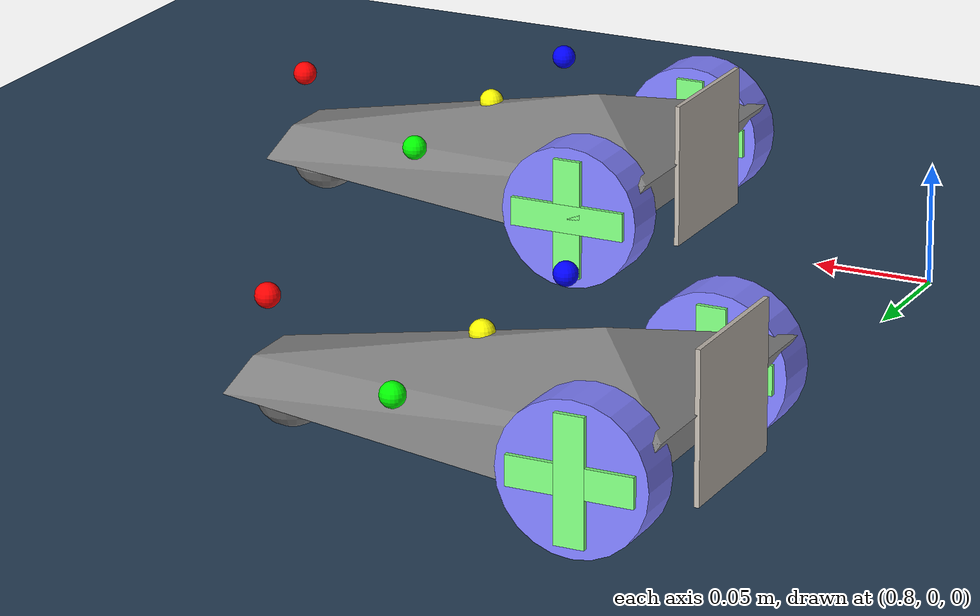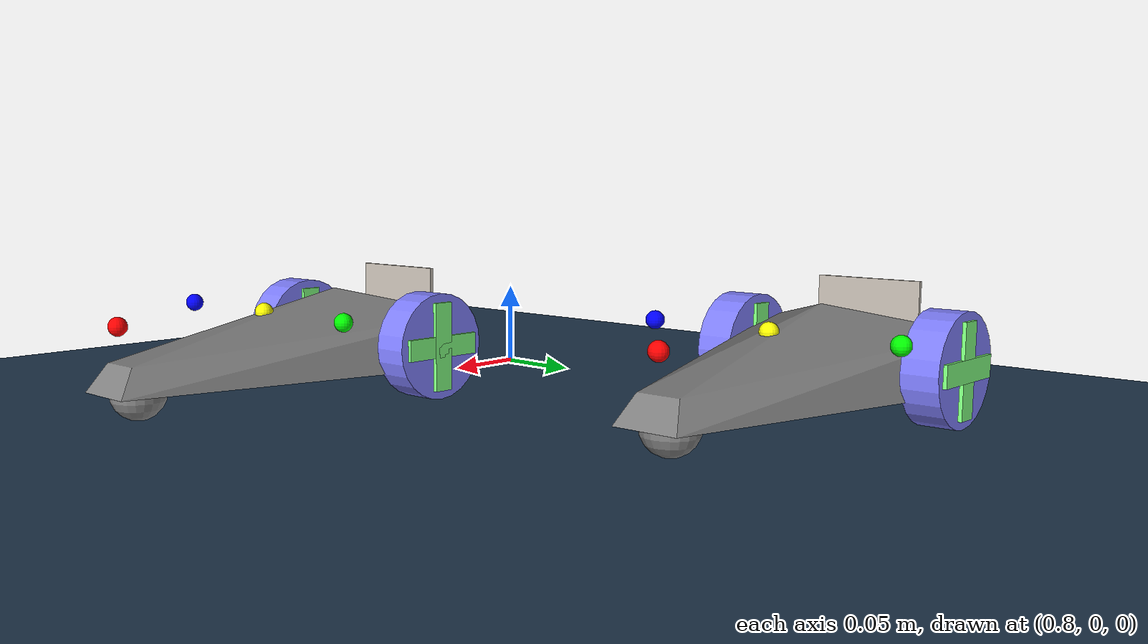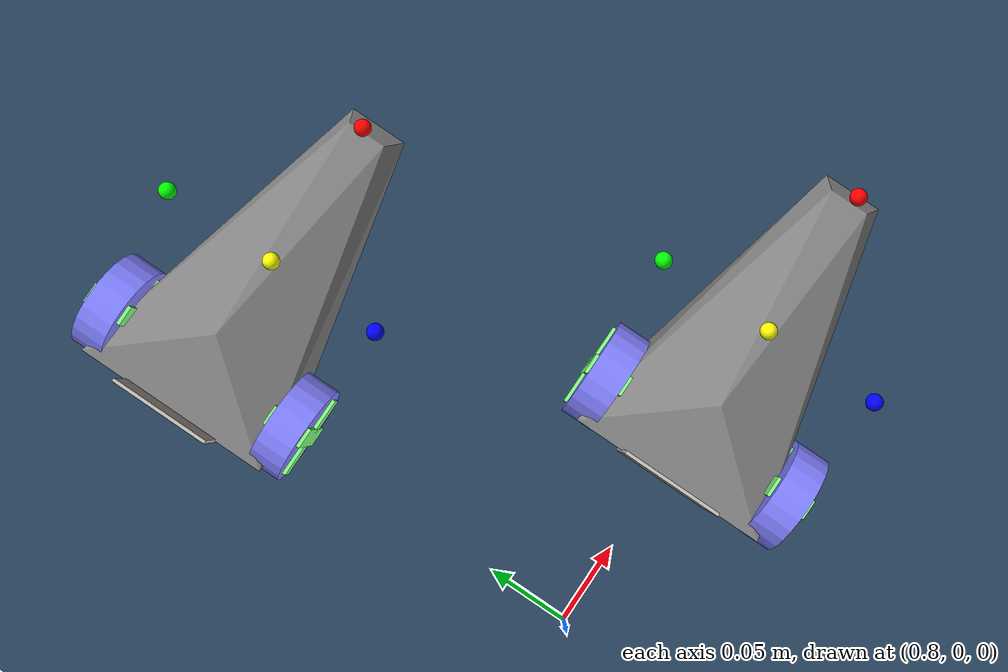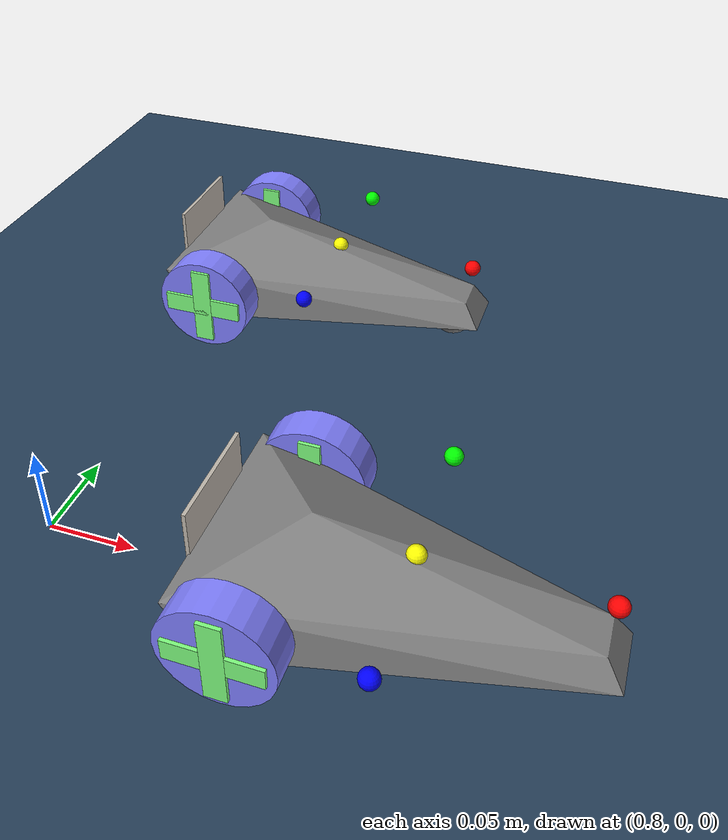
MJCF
<mujoco model="One Car Scene">
  <compiler autolimits="true"/>

  <option viscosity="0.5"/>

  <default>
    <joint damping=".03" actuatorfrcrange="-0.5 0.5"/>
    <default class="wheel">
      <geom type="cylinder" size=".03 .01" rgba=".5 .5 1 1"/>
    </default>
    <default class="decor">
      <site type="box" rgba=".5 1 .5 1"/>
    </default>
  </default>

  <asset>
    <!-- Общие ассеты -->
    <texture type="skybox" builtin="gradient" rgb1="0.3 0.5 0.7" rgb2="0 0 0" width="512" height="3072"/>
    <texture type="2d" name="groundplane" builtin="checker" mark="edge" rgb1="0.2 0.3 0.4" rgb2="0.1 0.2 0.3" markrgb="0.8 0.8 0.8" width="300" height="300"/>
    <material name="groundplane" texture="groundplane" texuniform="true" texrepeat="5 5" reflectance="0.2"/>

    <!-- Ассеты для Car 1 -->
    <texture name="car1_qr" type="2d" file="qr_codes/qr_1.png"/>
    <material name="car1_qr_material" texture="car1_qr" />
    <mesh name="car1_chasis" scale=".01 .006 .0015" vertex=" 9 2 0 -10 10 10 9 -2 0 10 3 -10 10 -3 -10 -8 10 -10 -10 -10 10 -8 -10 -10 -5 0 20"/>

    <texture name="car2_qr" type="2d" file="qr_codes/qr_2.png"/>
    <material name="car2_qr_material" texture="car2_qr" />
    <mesh name="car2_chasis" scale=".01 .006 .0015" vertex=" 9 2 0 -10 10 10 9 -2 0 10 3 -10 10 -3 -10 -8 10 -10 -10 -10 10 -8 -10 -10 -5 0 20"/>
  </asset>

  <worldbody>
    <light pos="0 0 1"/>
    <light pos="0 -0.2 1" dir="0 0.2 -0.8" directional="true"/>
    <geom name="floor" size="3 3 .01" type="plane" material="groundplane"/>

    <!-- ================== CAR 1 ================== -->
    <body name="car1" pos="1.0 0.0 .03">
      <camera name="car1_front_cam" mode="fixed" pos="0.1 0 0.0" euler="0 -90 270" fovy="45"/>
      <freejoint/>
      <light name="car1_top_light" pos="0 0 2" mode="trackcom" diffuse=".4 .4 .4"/>
      <geom name="car1_chasis" type="mesh" mesh="car1_chasis"/>
      <geom name="car1_qr_code_geom" type="box" size=".03 .03 .001" pos="-.1 0 .01" material="car1_qr_material" euler="90 90 0"/>
      <geom name="car1_front_wheel" pos=".08 0 -.015" type="sphere" size=".015" condim="1" priority="1"/>
      <light name="car1_front_light" pos=".1 0 .05" dir="2 0 -1" diffuse="1 1 1"/>
      <body name="car1_left_wheel" pos="-.07 .06 0" zaxis="0 1 0">
        <joint name="car1_left"/>
        <geom class="wheel"/>
        <site class="decor" size=".006 .025 .012"/>
        <site class="decor" size=".025 .006 .012"/>
      </body>
      <body name="car1_right_wheel" pos="-.07 -.06 0" zaxis="0 1 0">
        <joint name="car1_right"/>
        <geom class="wheel"/>
        <site class="decor" size=".006 .025 .012"/>
        <site class="decor" size=".025 .006 .012"/>
      </body>
      <site name="car1_imu" pos="0 0 0.02" size="0.005" rgba="1 1 0 1"/>
      <site name="car1_sensor_front" pos="0.09 0 0.02" size="0.005" rgba="1 0 0 1"/>
      <site name="car1_sensor_left"  pos="0 0.07 0.02" size="0.005" rgba="0 1 0 1"/>
      <site name="car1_sensor_right" pos="0 -0.07 0.02" size="0.005" rgba="0 0 1 1"/>
    </body>
    <!-- ================== CAR 2 ================== -->
    <body name="car2" pos="0.8775825618903728  0.25 .03">
      <camera name="car2_front_cam" mode="fixed" pos="0.1 0 0.0" euler="0 -90 270" fovy="45"/>
      <freejoint/>
      <light name="car2_top_light" pos="0 0 2" mode="trackcom" diffuse=".4 .4 .4"/>
      <geom name="car2_chasis" type="mesh" mesh="car2_chasis"/>
      <geom name="car2_qr_code_geom" type="box" size=".03 .03 .001" pos="-.1 0 .01" material="car2_qr_material" euler="90 90 0"/>
      <geom name="car2_front_wheel" pos=".08 0 -.015" type="sphere" size=".015" condim="1" priority="1"/>
      <light name="car2_front_light" pos=".1 0 .02" dir="2 0 -1" diffuse="1 1 1"/>
      <body name="car2_left_wheel" pos="-.07 .06 0" zaxis="0 1 0">
        <joint name="car2_left"/>
        <geom class="wheel"/>
        <site class="decor" size=".006 .025 .012"/>
        <site class="decor" size=".025 .006 .012"/>
      </body>
      <body name="car2_right_wheel" pos="-.07 -.06 0" zaxis="0 1 0">
        <joint name="car2_right"/>
        <geom class="wheel"/>
        <site class="decor" size=".006 .025 .012"/>
        <site class="decor" size=".025 .006 .012"/>
      </body>
      <site name="car2_imu" pos="0 0 0.02" size="0.005" rgba="1 1 0 1"/>
      <site name="car2_sensor_front" pos="0.09 0 0.02" size="0.005" rgba="1 0 0 1"/>
      <site name="car2_sensor_left"  pos="0 0.07 0.02" size="0.005" rgba="0 1 0 1"/>
      <site name="car2_sensor_right" pos="0 -0.07 0.02" size="0.005" rgba="0 0 1 1"/>
    </body>
  </worldbody>

  <tendon>
    <fixed name="car1_forward">
      <joint joint="car1_left" coef=".5"/>
      <joint joint="car1_right" coef=".5"/>
    </fixed>
    <fixed name="car1_turn">
      <joint joint="car1_left" coef="-.5"/>
      <joint joint="car1_right" coef=".5"/>
    </fixed>
    <fixed name="car2_forward">
      <joint joint="car2_left" coef=".5"/>
      <joint joint="car2_right" coef=".5"/>
    </fixed>
    <fixed name="car2_turn">
      <joint joint="car2_left" coef="-.5"/>
      <joint joint="car2_right" coef=".5"/>
    </fixed>
  </tendon>

  <actuator>
    <motor name="car1_forward" tendon="car1_forward" ctrlrange="-1 1"/>
    <motor name="car1_turn" tendon="car1_turn" ctrlrange="-1 1"/>
    <motor name="car2_forward" tendon="car2_forward" ctrlrange="-1 1"/>
    <motor name="car2_turn" tendon="car2_turn" ctrlrange="-1 1"/>
  </actuator>

  <sensor>
    <!-- Сенсоры Car 1 -->
    <jointactuatorfrc name="car1_right_frc" joint="car1_right"/>
    <jointactuatorfrc name="car1_left_frc" joint="car1_left"/>
    <gyro name="car1_gyro" site="car1_imu"/>
    <accelerometer name="car1_accel" site="car1_imu"/>
    <!-- Сенсоры Car 2 -->
    <jointactuatorfrc name="car2_right_frc" joint="car2_right"/>
    <jointactuatorfrc name="car2_left_frc" joint="car2_left"/>
    <gyro name="car2_gyro" site="car2_imu"/>
    <accelerometer name="car2_accel" site="car2_imu"/>
  </sensor>
</mujoco>
